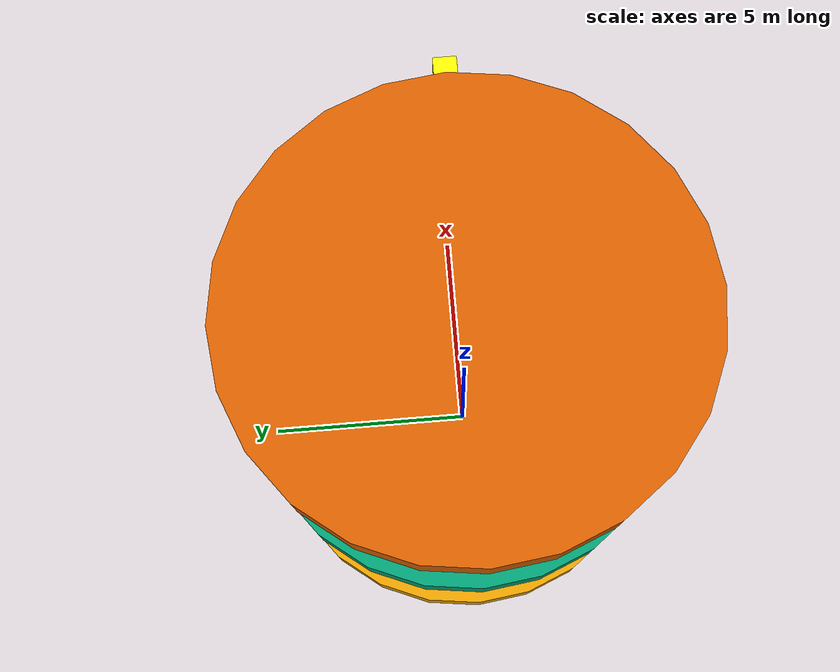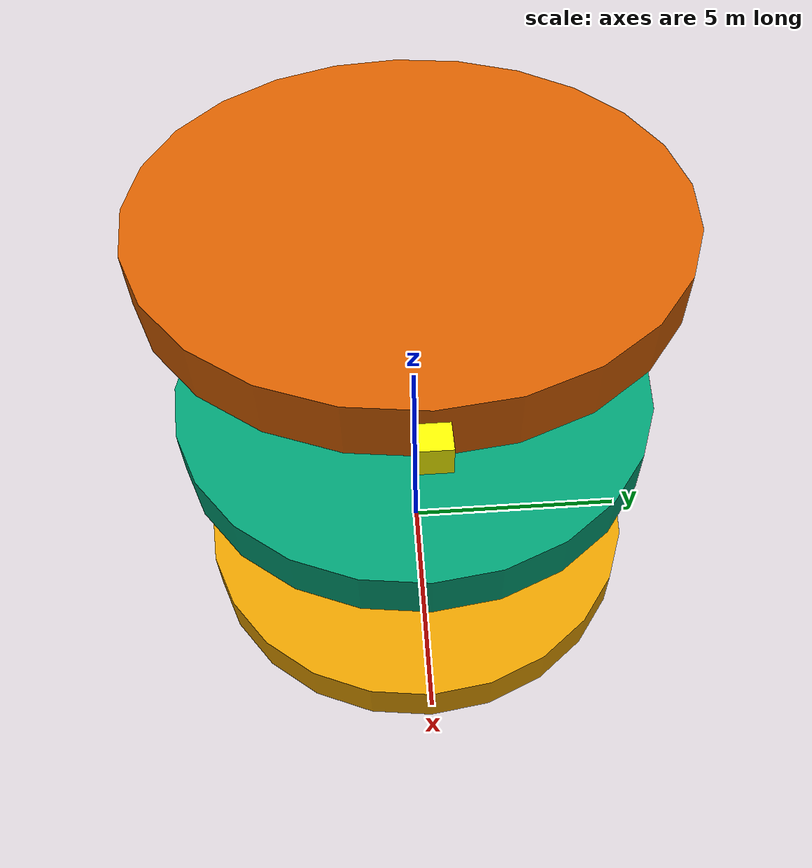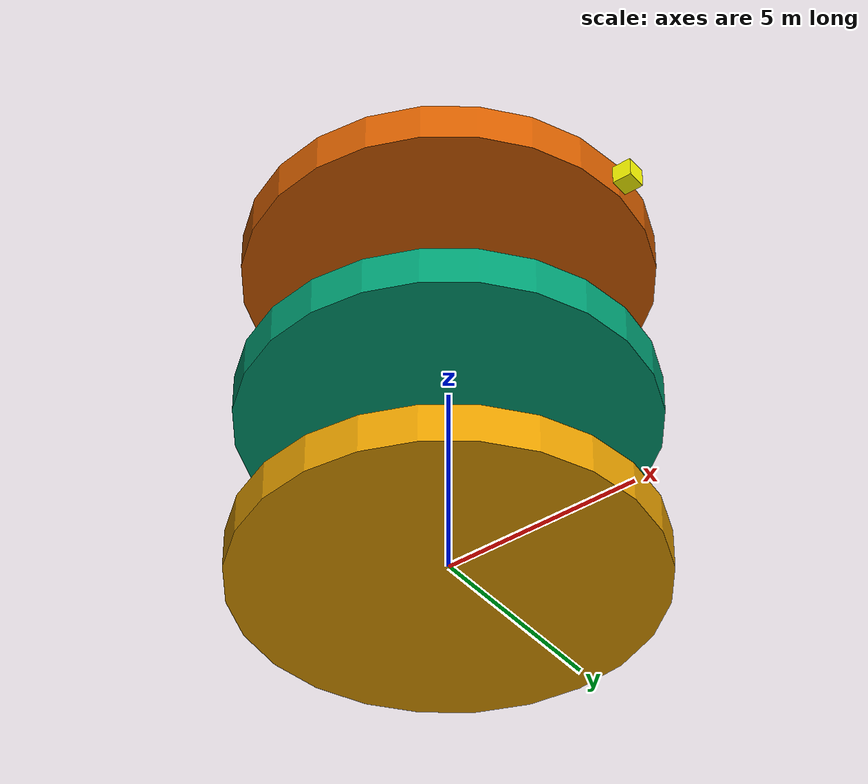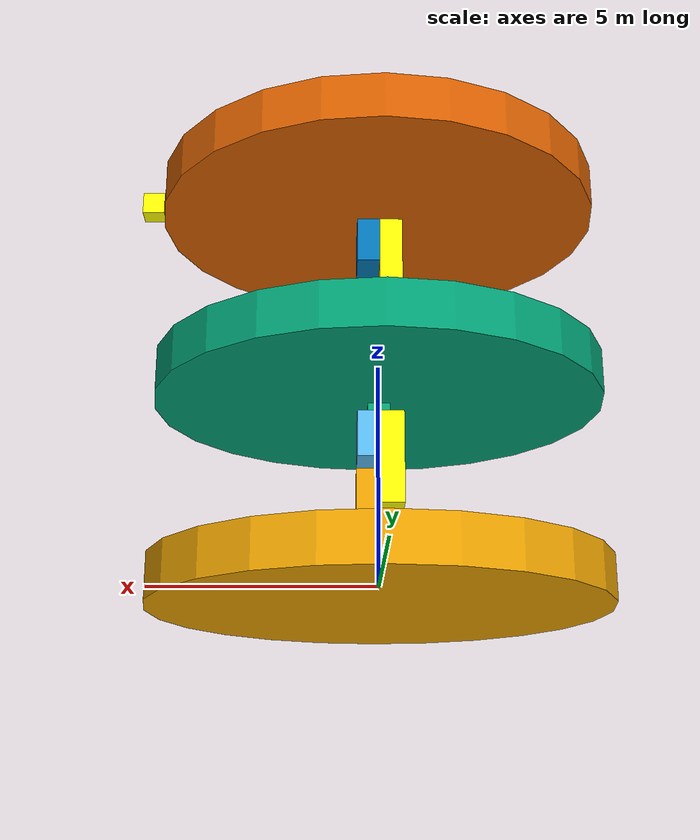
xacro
<?xml version="1.0"?>

<robot xmlns:xacro="http://www.ros.org/wiki/xacro" name="myfirst">

  <xacro:include filename="$(find robot)/urdf/control.gazebo" />

  <link name="base_link">
    <visual>
      <origin rpy="0 0 0" xyz="0 0 0"/>
      <geometry>
        <cylinder length="1" radius="5"/>
      </geometry>
    </visual>
    <visual>
      <origin rpy="0 0 0" xyz="0.25 0 1.5"/>
      <geometry>
        <box size="0.5 1 2"/>
      </geometry>
    </visual>
    <collision>
      <geometry>
        <cylinder length="1" radius="5"/>
	<origin rpy="0 0 0" xyz="0 0 0"/>
      </geometry>
    </collision>
    <inertial>
      <mass value="0.1"/>
      <inertia ixx="0.067" ixy="0.0" ixz="0.0" iyy="0.067" iyz="0.0" izz="0.035"/>
    </inertial>

  </link>

  <link name="inter_1">
     <visual>
       <origin rpy="0 0 0" xyz="-0.25 1 0"/>
       <geometry>
	 <box size="0.5 1 2"/>
       </geometry>
       <material name="yellow">
         <color rgba="1 1 0 1"/>
       </material>
     </visual>
     <visual>
	<origin rpy="0 0 0" xyz="-0.250 0 -0.5"/>
	<geometry>
		<box size="0.5 1 1"/>
	</geometry>
     </visual>
     <visual>
	<origin rpy="0 0 0" xyz="0.25 1 0.5"/>
	<geometry>
		<box size = "0.5 1 1"/>
	</geometry>
     </visual>
    <inertial>
      <mass value="0.1"/>
      <inertia ixx="0.067" ixy="0.0" ixz="0.0" iyy="0.067" iyz="0.0" izz="0.035"/>
    </inertial>
  </link>

  <joint name="rev_1" type="revolute">
	<origin xyz="0 0 2.5" rpy="0 0 0 "/>
	<parent link= "base_link"/>
	<child link = "inter_1"/>
	<axis xyz="1 0 0"/>
	<limit effort="30" velocity="1.0" lower="-0.45" upper="0.45" />
  </joint>

 <link name="link_2">
    <visual>
      <origin rpy="0 0 0" xyz="0 0 1.5"/>
      <geometry>
        <cylinder length="1" radius="5"/>
      </geometry>
    </visual>
    <visual>
      <origin rpy="0 0 0" xyz="0 0 0.5"/>
      <geometry>
        <box size="0.5 1 1.5"/>
      </geometry>
    </visual>
    <collision>
      <geometry>
        <cylinder length="1" radius="5"/>
	<origin rpy="0 0 0" xyz="0 0 1.5"/>
      </geometry>
    </collision>
    <inertial>
      <mass value="0.5"/>
      <inertia ixx="3.16" ixy="0.0" ixz="0.0" iyy="3.16" iyz="0.0" izz="6.25"/>
    </inertial>
  </link>
  <joint name="rev_2" type="revolute">
	<origin xyz="0 0 0.5" rpy="0 0 0 "/>
	<parent link= "inter_1"/>
	<child link = "link_2"/>
	<axis xyz="0 1 0"/>
	<limit effort="30" velocity="1.0" lower="-0.45" upper="0.45" />
  </joint>

  <link name="link_3">

    <visual>
      <origin rpy="0 0 0" xyz="0.25 0 1"/>
      <geometry>
        <box size="0.5 1 2"/>
      </geometry>
    </visual>
    <inertial>
      <mass value="0.1"/>
      <inertia ixx="0.01" ixy="0.0" ixz="0.0" iyy="0.042" iyz="0.0" izz="0.035"/>
    </inertial>
  </link>

  <joint name="fix_1" type="fixed">
	<origin xyz="0 0 2" rpy="0 0 0 "/>
	<parent link= "link_2"/>
	<child link = "link_3"/>

  </joint>

  <link name="inter_2">
     <visual>
       <origin rpy="0 0 0" xyz="-0.25 1 0.5"/>
       <geometry>
	 <box size="0.5 1 2"/>
       </geometry>
       <material name="yellow">
         <color rgba="1 1 0 1"/>
       </material>
     </visual>
     <visual>
	<origin rpy="0 0 0" xyz="-0.250 0 0"/>
	<geometry>
		<box size="0.5 1 1"/>
	</geometry>
     </visual>
     <visual>
	<origin rpy="0 0 0" xyz="0.25 1 1"/>
	<geometry>
		<box size = "0.5 1 1"/>
	</geometry>
     </visual>
    <inertial>
      <mass value="0.25"/>
      <inertia ixx="0.4" ixy="0.0" ixz="0.0" iyy="0.4" iyz="0.0" izz="0.2"/>
    </inertial>
  </link>

  <joint name="rev_3" type="revolute">
	<origin xyz="0 0 1.5" rpy="0 0 0 "/>
	<parent link= "link_3"/>
	<child link = "inter_2"/>
	<axis xyz="1 0 0"/>
	<limit effort="30" velocity="1.0" lower="-0.45" upper="0.45" />
  </joint>

 <link name="link_4">
    <visual>
      <origin rpy="0 0 0" xyz="0 0 1.5"/>
      <geometry>
        <cylinder length="1" radius="5"/>
      </geometry>
    </visual>
    <visual>
      <origin rpy="0 0 0" xyz="0 0 0.5"/>
      <geometry>
        <box size="0.5 1 1.5"/>
      </geometry>
    </visual>
    <collision>
      <geometry>
        <cylinder length="1" radius="5"/>
	<origin rpy="0 0 0" xyz="0 0 1.5"/>
      </geometry>
    </collision>
    <inertial>
      <mass value="0.1"/>
      <inertia ixx="0.067" ixy="0.0" ixz="0.0" iyy="0.067" iyz="0.0" izz="0.035"/>
    </inertial>
  </link>

  <joint name="rev_4" type="revolute">
	<origin xyz="0 0 1" rpy="0 0 0 "/>
	<parent link= "inter_2"/>
	<child link = "link_4"/>
	<axis xyz="0 1 0"/>
	<limit effort="30" velocity="1.0" lower="-0.45" upper="0.45" />
  </joint>

  <gazebo>
    <plugin name="gazebo_ros_control" filename="libgazebo_ros_control.so">
      <robotNamespace>/continuum</robotNamespace>
      <robotSimType>gazebo_ros_control/DefaultRobotHWSim</robotSimType>
    </plugin>
  </gazebo>

  <gazebo reference="camera_link">
      <sensor type="camera" name="camera1">
        <update_rate>30.0</update_rate>
        <camera name="head">
          <horizontal_fov>1.3962634</horizontal_fov>
          <image>
            <width>600</width>
            <height>600</height>
            <format>R8G8B8</format>
          </image>
          <clip>
            <near>0.02</near>
            <far>300</far>
          </clip>
          <noise>
            <type>gaussian</type>
            <!-- Noise is sampled independently per pixel on each frame.
                 That pixel's noise value is added to each of its color
                 channels, which at that point lie in the range [0,1]. -->
            <mean>0.0</mean>
            <stddev>0.007</stddev>
          </noise>

        </camera>
        <plugin name="camera_controller" filename="libgazebo_ros_camera.so">
          <alwaysOn>true</alwaysOn>
          <updateRate>0.0</updateRate>
          <cameraName>robot/camera1</cameraName>
          <imageTopicName>image_raw</imageTopicName>
          <cameraInfoTopicName>camera_info</cameraInfoTopicName>
          <frameName>camera_link</frameName>
          <hackBaseline>0.07</hackBaseline>
          <distortionK1>0.0</distortionK1>
          <distortionK2>0.0</distortionK2>
          <distortionK3>0.0</distortionK3>
          <distortionT1>0.0</distortionT1>
          <distortionT2>0.0</distortionT2>
        </plugin>
      </sensor>
    </gazebo>

 <transmission name="base_swing_1">
    <type>transmission_interface/SimpleTransmission</type>
    <actuator name="act1_1">
      <mechanicalReduction>1</mechanicalReduction>
    </actuator>
    <joint name="rev_1">
      <hardwareInterface>EffortJointInterface</hardwareInterface>
    </joint>
  </transmission>

  <transmission name="base_swing_2">
    <type>transmission_interface/SimpleTransmission</type>
    <actuator name="act1_2">
      <mechanicalReduction>1</mechanicalReduction>
    </actuator>
    <joint name="rev_2">
      <hardwareInterface>EffortJointInterface</hardwareInterface>
    </joint>
  </transmission>

  <transmission name="firstsw_1">
    <type>transmission_interface/SimpleTransmission</type>
    <actuator name="act2_1">
      <mechanicalReduction>1</mechanicalReduction>
    </actuator>
    <joint name="rev_3">
      <hardwareInterface>EffortJointInterface</hardwareInterface>
    </joint>
  </transmission>

  <transmission name="firstsw_2">
    <type>transmission_interface/SimpleTransmission</type>
    <actuator name="act2_2">
      <mechanicalReduction>1</mechanicalReduction>
    </actuator>
    <joint name="rev_4">
      <hardwareInterface>EffortJointInterface</hardwareInterface>
    </joint>
  </transmission>

  <link name="camera_link">

    <visual>
      <origin rpy="0 0 0" xyz="0 0 0.25"/>
      <geometry>
        <box size="0.5 0.5 0.5"/>
      </geometry>
       <material name="yellow">
         <color rgba="1 1 0 1"/>
       </material>
    </visual>
    <inertial>
      <mass value="0.1"/>
      <inertia ixx="0.01" ixy="0.0" ixz="0.0" iyy="0.042" iyz="0.0" izz="0.035"/>
    </inertial>
  </link>

  <joint name="fix_3" type="fixed">
	<origin xyz="5.25 0 1.25" rpy="0 0 0 "/>
	<parent link= "link_4"/>
	<child link = "camera_link"/>
  </joint>

</robot>
